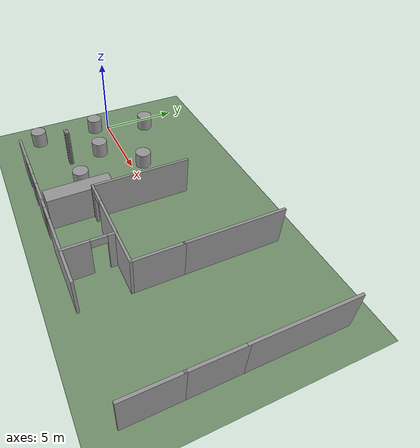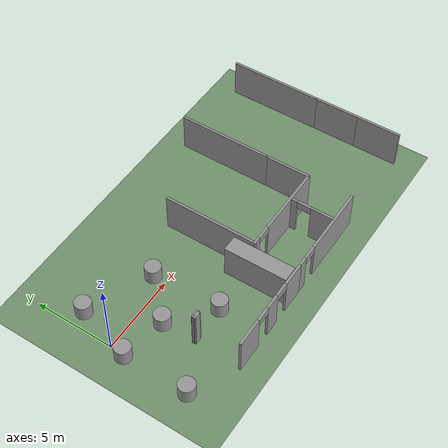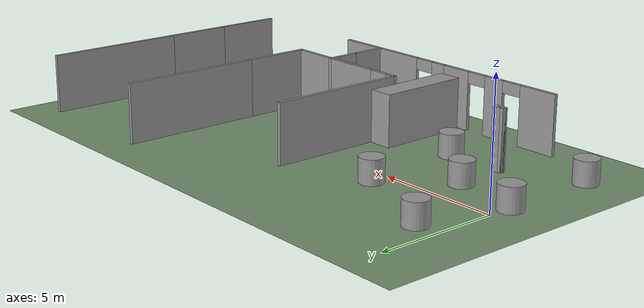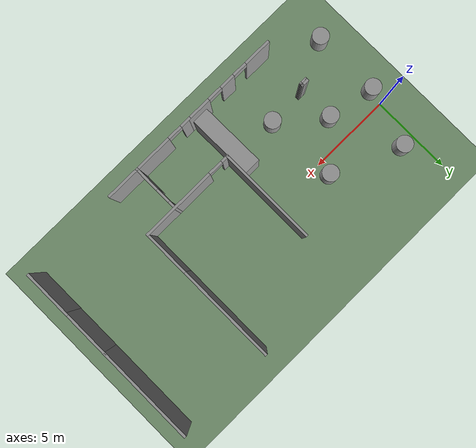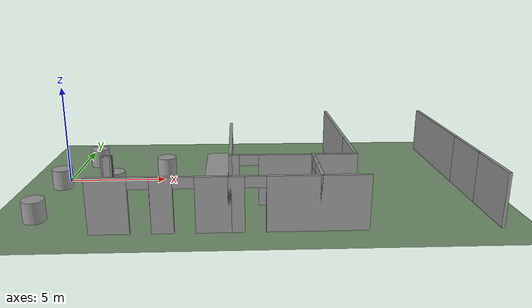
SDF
<sdf version="1.7">
 <world name="default">
  <model name="ground_plane">
   <static>1</static>
   <link name="link">
    <collision name="collision">
     <geometry><plane><normal>0 0 1</normal><size>600 600</size></plane></geometry>
     <surface>
      <contact><collide_bitmask>65535</collide_bitmask></contact>
      <friction><ode><mu>100</mu><mu2>50</mu2></ode></friction>
     </surface>
    </collision>
    <visual name="visual">
     <cast_shadows>0</cast_shadows>
     <geometry><plane><normal>0 0 1</normal><size>100 100</size></plane></geometry>
     <material><ambient>0.45 0.57 0.43 1</ambient><diffuse>0.45 0.57 0.43 1</diffuse></material>
    </visual>
   </link>
  </model>
  <model name="unit_box">
   <pose>7.98528 -4.31989 1.08896 -0 9.8e-05 -1.56185</pose>
   <link name="link">
    <inertial>
     <mass>1</mass>
     <inertia>
      <ixx>0.166667</ixx>
      <ixy>0</ixy>
      <ixz>0</ixz>
      <iyy>0.166667</iyy>
      <iyz>0</iyz>
      <izz>0.166667</izz>
     </inertia>
    </inertial>
    <collision name="collision"><geometry><box><size>3.92499 1 2.1783</size></box></geometry></collision>
    <visual name="visual">
     <geometry><box><size>3.92499 1 2.1783</size></box></geometry>
     <material>
      <script><name>Gazebo/Grey</name><uri>file://media/materials/scripts/gazebo.material</uri></script>
     </material>
    </visual>
   </link>
  </model>
  <model name="unit_cylinder">
   <pose>-0.09276 -5.01655 0.499994 3e-06 -3e-06 0</pose>
   <link name="link">
    <inertial>
     <mass>1</mass>
     <inertia><ixx>0.145833</ixx><ixy>0</ixy><ixz>0</ixz><iyy>0.145833</iyy><iyz>0</iyz><izz>0.125</izz></inertia>
    </inertial>
    <collision name="collision">
     <geometry><cylinder><radius>0.5</radius><length>1</length></cylinder></geometry>
    </collision>
    <visual name="visual">
     <geometry><cylinder><radius>0.5</radius><length>1</length></cylinder></geometry>
     <material>
      <script><name>Gazebo/Grey</name><uri>file://media/materials/scripts/gazebo.material</uri></script>
     </material>
    </visual>
   </link>
  </model>
  <model name="unit_cylinder_0">
   <pose>-0.106662 -0.917953 0.499996 -3e-06 3e-06 0</pose>
   <link name="link">
    <inertial>
     <mass>1</mass>
     <inertia><ixx>0.145833</ixx><ixy>0</ixy><ixz>0</ixz><iyy>0.145833</iyy><iyz>0</iyz><izz>0.125</izz></inertia>
    </inertial>
    <collision name="collision">
     <geometry><cylinder><radius>0.5</radius><length>1</length></cylinder></geometry>
    </collision>
    <visual name="visual">
     <geometry><cylinder><radius>0.5</radius><length>1</length></cylinder></geometry>
     <material>
      <script><name>Gazebo/Grey</name><uri>file://media/materials/scripts/gazebo.material</uri></script>
     </material>
    </visual>
   </link>
  </model>
  <model name="unit_cylinder_1">
   <pose>5.20323 -3.53372 0.499994 3e-06 -3e-06 0</pose>
   <link name="link">
    <inertial>
     <mass>1</mass>
     <inertia><ixx>0.145833</ixx><ixy>0</ixy><ixz>0</ixz><iyy>0.145833</iyy><iyz>0</iyz><izz>0.125</izz></inertia>
    </inertial>
    <collision name="collision">
     <geometry><cylinder><radius>0.5</radius><length>1</length></cylinder></geometry>
    </collision>
    <visual name="visual">
     <geometry><cylinder><radius>0.5</radius><length>1</length></cylinder></geometry>
     <material>
      <script><name>Gazebo/Grey</name><uri>file://media/materials/scripts/gazebo.material</uri></script>
     </material>
    </visual>
   </link>
  </model>
  <model name="unit_cylinder_2">
   <pose>5.01638 0.814972 0.499997 4e-06 2e-06 -0</pose>
   <link name="link">
    <inertial>
     <mass>1</mass>
     <inertia><ixx>0.145833</ixx><ixy>0</ixy><ixz>0</ixz><iyy>0.145833</iyy><iyz>0</iyz><izz>0.125</izz></inertia>
    </inertial>
    <collision name="collision">
     <geometry><cylinder><radius>0.5</radius><length>1</length></cylinder></geometry>
    </collision>
    <visual name="visual">
     <geometry><cylinder><radius>0.5</radius><length>1</length></cylinder></geometry>
     <material>
      <script><name>Gazebo/Grey</name><uri>file://media/materials/scripts/gazebo.material</uri></script>
     </material>
    </visual>
   </link>
  </model>
  <model name="myhal_V3_2">
   <link name="Wall_326">
    <pose>20.475 0 0 0 0 -1.5708</pose>
    <visual name="Wall_326_Visual">
     <pose>0 0 1.25 0 -0 0</pose>
     <geometry><box><size>6 0.15 2.5</size></box></geometry>
     <material>
      <script><uri>file://media/materials/scripts/gazebo.material</uri><name>Gazebo/Grey</name></script>
      <ambient>1 1 1 1</ambient>
      <shader type="pixel"/>
     </material>
     <meta><layer>0</layer></meta>
    </visual>
    <collision name="Wall_326_Collision">
     <pose>0 0 1.25 0 -0 0</pose>
     <geometry><box><size>6 0.15 2.5</size></box></geometry>
     <surface>
      <friction>
       <ode><mu>1</mu><mu2>1</mu2><fdir1>0 0 0</fdir1><slip1>0</slip1><slip2>0</slip2></ode>
       <torsional>
        <coefficient>1</coefficient>
        <patch_radius>0</patch_radius>
        <surface_radius>0</surface_radius>
        <use_patch_radius>1</use_patch_radius>
        <ode><slip>0</slip></ode>
       </torsional>
      </friction>
      <bounce><restitution_coefficient>0</restitution_coefficient><threshold>1e+06</threshold></bounce>
      <contact>
       <collide_without_contact>0</collide_without_contact>
       <collide_without_contact_bitmask>1</collide_without_contact_bitmask>
       <collide_bitmask>1</collide_bitmask>
       <ode>
        <soft_cfm>0</soft_cfm>
        <soft_erp>0.2</soft_erp>
        <kp>1e+13</kp>
        <kd>1</kd>
        <max_vel>0.01</max_vel>
        <min_depth>0</min_depth>
       </ode>
       <bullet>
        <split_impulse>1</split_impulse>
        <split_impulse_penetration_threshold>-0.01</split_impulse_penetration_threshold>
        <soft_cfm>0</soft_cfm>
        <soft_erp>0.2</soft_erp>
        <kp>1e+13</kp>
        <kd>1</kd>
       </bullet>
      </contact>
     </surface>
    </collision>
   </link>
   <link name="Wall_327">
    <pose>20.475 -4.35 0 0 0 -1.5708</pose>
    <visual name="Wall_327_Visual">
     <pose>0 0 1.25 0 -0 0</pose>
     <geometry><box><size>3 0.15 2.5</size></box></geometry>
     <material>
      <script><uri>file://media/materials/scripts/gazebo.material</uri><name>Gazebo/Grey</name></script>
      <ambient>1 1 1 1</ambient>
      <shader type="pixel"/>
     </material>
     <meta><layer>0</layer></meta>
    </visual>
    <collision name="Wall_327_Collision">
     <pose>0 0 1.25 0 -0 0</pose>
     <geometry><box><size>3 0.15 2.5</size></box></geometry>
     <surface>
      <friction>
       <ode><mu>1</mu><mu2>1</mu2><fdir1>0 0 0</fdir1><slip1>0</slip1><slip2>0</slip2></ode>
       <torsional>
        <coefficient>1</coefficient>
        <patch_radius>0</patch_radius>
        <surface_radius>0</surface_radius>
        <use_patch_radius>1</use_patch_radius>
        <ode><slip>0</slip></ode>
       </torsional>
      </friction>
      <bounce><restitution_coefficient>0</restitution_coefficient><threshold>1e+06</threshold></bounce>
      <contact>
       <collide_without_contact>0</collide_without_contact>
       <collide_without_contact_bitmask>1</collide_without_contact_bitmask>
       <collide_bitmask>1</collide_bitmask>
       <ode>
        <soft_cfm>0</soft_cfm>
        <soft_erp>0.2</soft_erp>
        <kp>1e+13</kp>
        <kd>1</kd>
        <max_vel>0.01</max_vel>
        <min_depth>0</min_depth>
       </ode>
       <bullet>
        <split_impulse>1</split_impulse>
        <split_impulse_penetration_threshold>-0.01</split_impulse_penetration_threshold>
        <soft_cfm>0</soft_cfm>
        <soft_erp>0.2</soft_erp>
        <kp>1e+13</kp>
        <kd>1</kd>
       </bullet>
      </contact>
     </surface>
    </collision>
   </link>
   <link name="Wall_328">
    <pose>20.475 -7.2 0 0 0 -1.5708</pose>
    <visual name="Wall_328_Visual">
     <pose>0 0 1.25 0 -0 0</pose>
     <geometry><box><size>3 0.15 2.5</size></box></geometry>
     <material>
      <script><uri>file://media/materials/scripts/gazebo.material</uri><name>Gazebo/Grey</name></script>
      <ambient>1 1 1 1</ambient>
      <shader type="pixel"/>
     </material>
     <meta><layer>0</layer></meta>
    </visual>
    <collision name="Wall_328_Collision">
     <pose>0 0 1.25 0 -0 0</pose>
     <geometry><box><size>3 0.15 2.5</size></box></geometry>
     <surface>
      <friction>
       <ode><mu>1</mu><mu2>1</mu2><fdir1>0 0 0</fdir1><slip1>0</slip1><slip2>0</slip2></ode>
       <torsional>
        <coefficient>1</coefficient>
        <patch_radius>0</patch_radius>
        <surface_radius>0</surface_radius>
        <use_patch_radius>1</use_patch_radius>
        <ode><slip>0</slip></ode>
       </torsional>
      </friction>
      <bounce><restitution_coefficient>0</restitution_coefficient><threshold>1e+06</threshold></bounce>
      <contact>
       <collide_without_contact>0</collide_without_contact>
       <collide_without_contact_bitmask>1</collide_without_contact_bitmask>
       <collide_bitmask>1</collide_bitmask>
       <ode>
        <soft_cfm>0</soft_cfm>
        <soft_erp>0.2</soft_erp>
        <kp>1e+13</kp>
        <kd>1</kd>
        <max_vel>0.01</max_vel>
        <min_depth>0</min_depth>
       </ode>
       <bullet>
        <split_impulse>1</split_impulse>
        <split_impulse_penetration_threshold>-0.01</split_impulse_penetration_threshold>
        <soft_cfm>0</soft_cfm>
        <soft_erp>0.2</soft_erp>
        <kp>1e+13</kp>
        <kd>1</kd>
       </bullet>
      </contact>
     </surface>
    </collision>
   </link>
   <link name="Wall_474">
    <pose>14.625 0 0 0 0 -1.5708</pose>
    <visual name="Wall_474_Visual">
     <pose>0 0 1.25 0 -0 0</pose>
     <geometry><box><size>6 0.15 2.5</size></box></geometry>
     <material>
      <script><uri>file://media/materials/scripts/gazebo.material</uri><name>Gazebo/Grey</name></script>
      <ambient>1 1 1 1</ambient>
      <shader type="pixel"/>
     </material>
     <meta><layer>0</layer></meta>
    </visual>
    <collision name="Wall_474_Collision">
     <pose>0 0 1.25 0 -0 0</pose>
     <geometry><box><size>6 0.15 2.5</size></box></geometry>
     <surface>
      <friction>
       <ode><mu>1</mu><mu2>1</mu2><fdir1>0 0 0</fdir1><slip1>0</slip1><slip2>0</slip2></ode>
       <torsional>
        <coefficient>1</coefficient>
        <patch_radius>0</patch_radius>
        <surface_radius>0</surface_radius>
        <use_patch_radius>1</use_patch_radius>
        <ode><slip>0</slip></ode>
       </torsional>
      </friction>
      <bounce><restitution_coefficient>0</restitution_coefficient><threshold>1e+06</threshold></bounce>
      <contact>
       <collide_without_contact>0</collide_without_contact>
       <collide_without_contact_bitmask>1</collide_without_contact_bitmask>
       <collide_bitmask>1</collide_bitmask>
       <ode>
        <soft_cfm>0</soft_cfm>
        <soft_erp>0.2</soft_erp>
        <kp>1e+13</kp>
        <kd>1</kd>
        <max_vel>0.01</max_vel>
        <min_depth>0</min_depth>
       </ode>
       <bullet>
        <split_impulse>1</split_impulse>
        <split_impulse_penetration_threshold>-0.01</split_impulse_penetration_threshold>
        <soft_cfm>0</soft_cfm>
        <soft_erp>0.2</soft_erp>
        <kp>1e+13</kp>
        <kd>1</kd>
       </bullet>
      </contact>
     </surface>
    </collision>
   </link>
   <link name="Wall_475">
    <pose>14.625 -4.35 0 0 0 -1.5708</pose>
    <visual name="Wall_475_Visual">
     <pose>0 0 1.25 0 -0 0</pose>
     <geometry><box><size>3 0.15 2.5</size></box></geometry>
     <material>
      <script><uri>file://media/materials/scripts/gazebo.material</uri><name>Gazebo/Grey</name></script>
      <ambient>1 1 1 1</ambient>
      <shader type="pixel"/>
     </material>
     <meta><layer>0</layer></meta>
    </visual>
    <collision name="Wall_475_Collision">
     <pose>0 0 1.25 0 -0 0</pose>
     <geometry><box><size>3 0.15 2.5</size></box></geometry>
     <surface>
      <friction>
       <ode><mu>1</mu><mu2>1</mu2><fdir1>0 0 0</fdir1><slip1>0</slip1><slip2>0</slip2></ode>
       <torsional>
        <coefficient>1</coefficient>
        <patch_radius>0</patch_radius>
        <surface_radius>0</surface_radius>
        <use_patch_radius>1</use_patch_radius>
        <ode><slip>0</slip></ode>
       </torsional>
      </friction>
      <bounce><restitution_coefficient>0</restitution_coefficient><threshold>1e+06</threshold></bounce>
      <contact>
       <collide_without_contact>0</collide_without_contact>
       <collide_without_contact_bitmask>1</collide_without_contact_bitmask>
       <collide_bitmask>1</collide_bitmask>
       <ode>
        <soft_cfm>0</soft_cfm>
        <soft_erp>0.2</soft_erp>
        <kp>1e+13</kp>
        <kd>1</kd>
        <max_vel>0.01</max_vel>
        <min_depth>0</min_depth>
       </ode>
       <bullet>
        <split_impulse>1</split_impulse>
        <split_impulse_penetration_threshold>-0.01</split_impulse_penetration_threshold>
        <soft_cfm>0</soft_cfm>
        <soft_erp>0.2</soft_erp>
        <kp>1e+13</kp>
        <kd>1</kd>
       </bullet>
      </contact>
     </surface>
    </collision>
   </link>
   <link name="Wall_476">
    <pose>11.7 -5.775 0 0 -0 3.14159</pose>
    <visual name="Wall_476_Visual_0">
     <pose>-0.696561 0 1.25 0 -0 0</pose>
     <geometry><box><size>4.60688 0.15 2.5</size></box></geometry>
     <material>
      <script><uri>file://media/materials/scripts/gazebo.material</uri><name>Gazebo/Grey</name></script>
      <ambient>1 1 1 1</ambient>
      <shader type="pixel"/>
     </material>
     <meta><layer>0</layer></meta>
    </visual>
    <visual name="Wall_476_Visual_1">
     <pose>2.75344 0 1.25 0 -0 0</pose>
     <geometry><box><size>0.493122 0.15 2.5</size></box></geometry>
     <material>
      <script><uri>file://media/materials/scripts/gazebo.material</uri><name>Gazebo/Grey</name></script>
      <ambient>1 1 1 1</ambient>
      <shader type="pixel"/>
     </material>
     <meta><layer>0</layer></meta>
    </visual>
    <visual name="Wall_476_Visual_2">
     <pose>2.05688 0 2.25 0 -0 0</pose>
     <geometry><box><size>0.9 0.15 0.5</size></box></geometry>
     <material>
      <script><uri>file://media/materials/scripts/gazebo.material</uri><name>Gazebo/Grey</name></script>
      <ambient>1 1 1 1</ambient>
      <shader type="pixel"/>
     </material>
     <meta><layer>0</layer></meta>
    </visual>
    <collision name="Wall_476_Collision_0">
     <pose>-0.696561 0 1.25 0 -0 0</pose>
     <geometry><box><size>4.60688 0.15 2.5</size></box></geometry>
     <surface>
      <friction>
       <ode><mu>1</mu><mu2>1</mu2><fdir1>0 0 0</fdir1><slip1>0</slip1><slip2>0</slip2></ode>
       <torsional>
        <coefficient>1</coefficient>
        <patch_radius>0</patch_radius>
        <surface_radius>0</surface_radius>
        <use_patch_radius>1</use_patch_radius>
        <ode><slip>0</slip></ode>
       </torsional>
      </friction>
      <bounce><restitution_coefficient>0</restitution_coefficient><threshold>1e+06</threshold></bounce>
      <contact>
       <collide_without_contact>0</collide_without_contact>
       <collide_without_contact_bitmask>1</collide_without_contact_bitmask>
       <collide_bitmask>1</collide_bitmask>
       <ode>
        <soft_cfm>0</soft_cfm>
        <soft_erp>0.2</soft_erp>
        <kp>1e+13</kp>
        <kd>1</kd>
        <max_vel>0.01</max_vel>
        <min_depth>0</min_depth>
       </ode>
       <bullet>
        <split_impulse>1</split_impulse>
        <split_impulse_penetration_threshold>-0.01</split_impulse_penetration_threshold>
        <soft_cfm>0</soft_cfm>
        <soft_erp>0.2</soft_erp>
        <kp>1e+13</kp>
        <kd>1</kd>
       </bullet>
      </contact>
     </surface>
    </collision>
    <collision name="Wall_476_Collision_1">
     <pose>2.75344 0 1.25 0 -0 0</pose>
     <geometry><box><size>0.493122 0.15 2.5</size></box></geometry>
     <surface>
      <friction>
       <ode><mu>1</mu><mu2>1</mu2><fdir1>0 0 0</fdir1><slip1>0</slip1><slip2>0</slip2></ode>
       <torsional>
        <coefficient>1</coefficient>
        <patch_radius>0</patch_radius>
        <surface_radius>0</surface_radius>
        <use_patch_radius>1</use_patch_radius>
        <ode><slip>0</slip></ode>
       </torsional>
      </friction>
      <bounce><restitution_coefficient>0</restitution_coefficient><threshold>1e+06</threshold></bounce>
      <contact>
       <collide_without_contact>0</collide_without_contact>
       <collide_without_contact_bitmask>1</collide_without_contact_bitmask>
       <collide_bitmask>1</collide_bitmask>
       <ode>
        <soft_cfm>0</soft_cfm>
        <soft_erp>0.2</soft_erp>
        <kp>1e+13</kp>
        <kd>1</kd>
        <max_vel>0.01</max_vel>
        <min_depth>0</min_depth>
       </ode>
       <bullet>
        <split_impulse>1</split_impulse>
        <split_impulse_penetration_threshold>-0.01</split_impulse_penetration_threshold>
        <soft_cfm>0</soft_cfm>
        <soft_erp>0.2</soft_erp>
        <kp>1e+13</kp>
        <kd>1</kd>
       </bullet>
      </contact>
     </surface>
    </collision>
    <collision name="Wall_476_Collision_2">
     <pose>2.05688 0 2.25 0 -0 0</pose>
     <geometry><box><size>0.9 0.15 0.5</size></box></geometry>
     <surface>
      <friction>
       <ode><mu>1</mu><mu2>1</mu2><fdir1>0 0 0</fdir1><slip1>0</slip1><slip2>0</slip2></ode>
       <torsional>
        <coefficient>1</coefficient>
        <patch_radius>0</patch_radius>
        <surface_radius>0</surface_radius>
        <use_patch_radius>1</use_patch_radius>
        <ode><slip>0</slip></ode>
       </torsional>
      </friction>
      <bounce><restitution_coefficient>0</restitution_coefficient><threshold>1e+06</threshold></bounce>
      <contact>
       <collide_without_contact>0</collide_without_contact>
       <collide_without_contact_bitmask>1</collide_without_contact_bitmask>
       <collide_bitmask>1</collide_bitmask>
       <ode>
        <soft_cfm>0</soft_cfm>
        <soft_erp>0.2</soft_erp>
        <kp>1e+13</kp>
        <kd>1</kd>
        <max_vel>0.01</max_vel>
        <min_depth>0</min_depth>
       </ode>
       <bullet>
        <split_impulse>1</split_impulse>
        <split_impulse_penetration_threshold>-0.01</split_impulse_penetration_threshold>
        <soft_cfm>0</soft_cfm>
        <soft_erp>0.2</soft_erp>
        <kp>1e+13</kp>
        <kd>1</kd>
       </bullet>
      </contact>
     </surface>
    </collision>
   </link>
   <link name="Wall_477">
    <pose>8.775 -2.85 0 0 -0 1.5708</pose>
    <visual name="Wall_477_Visual">
     <pose>0 0 1.25 0 -0 0</pose>
     <geometry><box><size>6 0.15 2.5</size></box></geometry>
     <material>
      <script><uri>file://media/materials/scripts/gazebo.material</uri><name>Gazebo/Grey</name></script>
      <ambient>1 1 1 1</ambient>
      <shader type="pixel"/>
     </material>
     <meta><layer>0</layer></meta>
    </visual>
    <collision name="Wall_477_Collision">
     <pose>0 0 1.25 0 -0 0</pose>
     <geometry><box><size>6 0.15 2.5</size></box></geometry>
     <surface>
      <friction>
       <ode><mu>1</mu><mu2>1</mu2><fdir1>0 0 0</fdir1><slip1>0</slip1><slip2>0</slip2></ode>
       <torsional>
        <coefficient>1</coefficient>
        <patch_radius>0</patch_radius>
        <surface_radius>0</surface_radius>
        <use_patch_radius>1</use_patch_radius>
        <ode><slip>0</slip></ode>
       </torsional>
      </friction>
      <bounce><restitution_coefficient>0</restitution_coefficient><threshold>1e+06</threshold></bounce>
      <contact>
       <collide_without_contact>0</collide_without_contact>
       <collide_without_contact_bitmask>1</collide_without_contact_bitmask>
       <collide_bitmask>1</collide_bitmask>
       <ode>
        <soft_cfm>0</soft_cfm>
        <soft_erp>0.2</soft_erp>
        <kp>1e+13</kp>
        <kd>1</kd>
        <max_vel>0.01</max_vel>
        <min_depth>0</min_depth>
       </ode>
       <bullet>
        <split_impulse>1</split_impulse>
        <split_impulse_penetration_threshold>-0.01</split_impulse_penetration_threshold>
        <soft_cfm>0</soft_cfm>
        <soft_erp>0.2</soft_erp>
        <kp>1e+13</kp>
        <kd>1</kd>
       </bullet>
      </contact>
     </surface>
    </collision>
   </link>
   <link name="Wall_486">
    <pose>5.85 -8.625 0 0 -0 0</pose>
    <inertial>
     <mass>1</mass>
     <inertia><ixx>1</ixx><ixy>0</ixy><ixz>0</ixz><iyy>1</iyy><iyz>0</iyz><izz>1</izz></inertia>
    </inertial>
    <visual name="Wall_486_Visual_0">
     <pose>-2.13314 0 1.25 0 -0 0</pose>
     <geometry><box><size>1.73371 0.15 2.5</size></box></geometry>
     <material>
      <script><uri>file://media/materials/scripts/gazebo.material</uri><name>Gazebo/Grey</name></script>
      <ambient>1 1 1 1</ambient>
      <shader type="pixel"><normal_map>__default__</normal_map></shader>
     </material>
     <meta><layer>0</layer></meta>
    </visual>
    <visual name="Wall_486_Visual_1">
     <pose>0.10739 0 1.25 0 -0 0</pose>
     <geometry><box><size>0.94735 0.15 2.5</size></box></geometry>
     <material>
      <script><uri>file://media/materials/scripts/gazebo.material</uri><name>Gazebo/Grey</name></script>
      <ambient>1 1 1 1</ambient>
      <shader type="pixel"><normal_map>__default__</normal_map></shader>
     </material>
     <meta><layer>0</layer></meta>
    </visual>
    <visual name="Wall_486_Visual_2">
     <pose>2.24053 0 1.25 0 -0 0</pose>
     <geometry><box><size>1.51893 0.15 2.5</size></box></geometry>
     <material>
      <script><uri>file://media/materials/scripts/gazebo.material</uri><name>Gazebo/Grey</name></script>
      <ambient>1 1 1 1</ambient>
      <shader type="pixel"><normal_map>__default__</normal_map></shader>
     </material>
     <meta><layer>0</layer></meta>
    </visual>
    <visual name="Wall_486_Visual_3">
     <pose>-0.816286 0 2.25 0 -0 0</pose>
     <geometry><box><size>0.9 0.15 0.5</size></box></geometry>
     <material>
      <script><uri>file://media/materials/scripts/gazebo.material</uri><name>Gazebo/Grey</name></script>
      <ambient>1 1 1 1</ambient>
      <shader type="pixel"><normal_map>__default__</normal_map></shader>
     </material>
     <meta><layer>0</layer></meta>
    </visual>
    <visual name="Wall_486_Visual_4">
     <pose>1.03106 0 2.25 0 -0 0</pose>
     <geometry><box><size>0.9 0.15 0.5</size></box></geometry>
     <material>
      <script><uri>file://media/materials/scripts/gazebo.material</uri><name>Gazebo/Grey</name></script>
      <ambient>1 1 1 1</ambient>
      <shader type="pixel"><normal_map>__default__</normal_map></shader>
     </material>
     <meta><layer>0</layer></meta>
    </visual>
    <collision name="Wall_486_Collision_0">
     <pose>-2.13314 0 1.25 0 -0 0</pose>
     <geometry><box><size>1.73371 0.15 2.5</size></box></geometry>
     <surface>
      <friction>
       <ode><mu>1</mu><mu2>1</mu2><fdir1>0 0 0</fdir1><slip1>0</slip1><slip2>0</slip2></ode>
       <torsional>
        <coefficient>1</coefficient>
        <patch_radius>0</patch_radius>
        <surface_radius>0</surface_radius>
        <use_patch_radius>1</use_patch_radius>
        <ode><slip>0</slip></ode>
       </torsional>
      </friction>
      <bounce><restitution_coefficient>0</restitution_coefficient><threshold>1e+06</threshold></bounce>
      <contact>
       <collide_without_contact>0</collide_without_contact>
       <collide_without_contact_bitmask>1</collide_without_contact_bitmask>
       <collide_bitmask>1</collide_bitmask>
       <ode>
        <soft_cfm>0</soft_cfm>
        <soft_erp>0.2</soft_erp>
        <kp>1e+13</kp>
        <kd>1</kd>
        <max_vel>0.01</max_vel>
        <min_depth>0</min_depth>
       </ode>
       <bullet>
        <split_impulse>1</split_impulse>
        <split_impulse_penetration_threshold>-0.01</split_impulse_penetration_threshold>
        <soft_cfm>0</soft_cfm>
        <soft_erp>0.2</soft_erp>
        <kp>1e+13</kp>
        <kd>1</kd>
       </bullet>
      </contact>
     </surface>
    </collision>
    <collision name="Wall_486_Collision_1">
     <pose>0.10739 0 1.25 0 -0 0</pose>
     <geometry><box><size>0.94735 0.15 2.5</size></box></geometry>
     <surface>
      <friction>
       <ode><mu>1</mu><mu2>1</mu2><fdir1>0 0 0</fdir1><slip1>0</slip1><slip2>0</slip2></ode>
       <torsional>
        <coefficient>1</coefficient>
        <patch_radius>0</patch_radius>
        <surface_radius>0</surface_radius>
        <use_patch_radius>1</use_patch_radius>
        <ode><slip>0</slip></ode>
       </torsional>
      </friction>
      <bounce><restitution_coefficient>0</restitution_coefficient><threshold>1e+06</threshold></bounce>
      <contact>
       <collide_without_contact>0</collide_without_contact>
       <collide_without_contact_bitmask>1</collide_without_contact_bitmask>
       <collide_bitmask>1</collide_bitmask>
       <ode>
        <soft_cfm>0</soft_cfm>
        <soft_erp>0.2</soft_erp>
        <kp>1e+13</kp>
        <kd>1</kd>
        <max_vel>0.01</max_vel>
        <min_depth>0</min_depth>
       </ode>
       <bullet>
        <split_impulse>1</split_impulse>
        <split_impulse_penetration_threshold>-0.01</split_impulse_penetration_threshold>
        <soft_cfm>0</soft_cfm>
        <soft_erp>0.2</soft_erp>
        <kp>1e+13</kp>
        <kd>1</kd>
       </bullet>
      </contact>
     </surface>
    </collision>
    <collision name="Wall_486_Collision_2">
     <pose>2.24053 0 1.25 0 -0 0</pose>
     <geometry><box><size>1.51893 0.15 2.5</size></box></geometry>
     <surface>
      <friction>
       <ode><mu>1</mu><mu2>1</mu2><fdir1>0 0 0</fdir1><slip1>0</slip1><slip2>0</slip2></ode>
       <torsional>
        <coefficient>1</coefficient>
        <patch_radius>0</patch_radius>
        <surface_radius>0</surface_radius>
        <use_patch_radius>1</use_patch_radius>
        <ode><slip>0</slip></ode>
       </torsional>
      </friction>
      <bounce><restitution_coefficient>0</restitution_coefficient><threshold>1e+06</threshold></bounce>
      <contact>
       <collide_without_contact>0</collide_without_contact>
       <collide_without_contact_bitmask>1</collide_without_contact_bitmask>
       <collide_bitmask>1</collide_bitmask>
       <ode>
        <soft_cfm>0</soft_cfm>
        <soft_erp>0.2</soft_erp>
        <kp>1e+13</kp>
        <kd>1</kd>
        <max_vel>0.01</max_vel>
        <min_depth>0</min_depth>
       </ode>
       <bullet>
        <split_impulse>1</split_impulse>
        <split_impulse_penetration_threshold>-0.01</split_impulse_penetration_threshold>
        <soft_cfm>0</soft_cfm>
        <soft_erp>0.2</soft_erp>
        <kp>1e+13</kp>
        <kd>1</kd>
       </bullet>
      </contact>
     </surface>
    </collision>
    <collision name="Wall_486_Collision_3">
     <pose>-0.816286 0 2.25 0 -0 0</pose>
     <geometry><box><size>0.9 0.15 0.5</size></box></geometry>
     <surface>
      <friction>
       <ode><mu>1</mu><mu2>1</mu2><fdir1>0 0 0</fdir1><slip1>0</slip1><slip2>0</slip2></ode>
       <torsional>
        <coefficient>1</coefficient>
        <patch_radius>0</patch_radius>
        <surface_radius>0</surface_radius>
        <use_patch_radius>1</use_patch_radius>
        <ode><slip>0</slip></ode>
       </torsional>
      </friction>
      <bounce><restitution_coefficient>0</restitution_coefficient><threshold>1e+06</threshold></bounce>
      <contact>
       <collide_without_contact>0</collide_without_contact>
       <collide_without_contact_bitmask>1</collide_without_contact_bitmask>
       <collide_bitmask>1</collide_bitmask>
       <ode>
        <soft_cfm>0</soft_cfm>
        <soft_erp>0.2</soft_erp>
        <kp>1e+13</kp>
        <kd>1</kd>
        <max_vel>0.01</max_vel>
        <min_depth>0</min_depth>
       </ode>
       <bullet>
        <split_impulse>1</split_impulse>
        <split_impulse_penetration_threshold>-0.01</split_impulse_penetration_threshold>
        <soft_cfm>0</soft_cfm>
        <soft_erp>0.2</soft_erp>
        <kp>1e+13</kp>
        <kd>1</kd>
       </bullet>
      </contact>
     </surface>
    </collision>
    <collision name="Wall_486_Collision_4">
     <pose>1.03106 0 2.25 0 -0 0</pose>
     <geometry><box><size>0.9 0.15 0.5</size></box></geometry>
     <surface>
      <friction>
       <ode><mu>1</mu><mu2>1</mu2><fdir1>0 0 0</fdir1><slip1>0</slip1><slip2>0</slip2></ode>
       <torsional>
        <coefficient>1</coefficient>
        <patch_radius>0</patch_radius>
        <surface_radius>0</surface_radius>
        <use_patch_radius>1</use_patch_radius>
        <ode><slip>0</slip></ode>
       </torsional>
      </friction>
      <bounce><restitution_coefficient>0</restitution_coefficient><threshold>1e+06</threshold></bounce>
      <contact>
       <collide_without_contact>0</collide_without_contact>
       <collide_without_contact_bitmask>1</collide_without_contact_bitmask>
       <collide_bitmask>1</collide_bitmask>
       <ode>
        <soft_cfm>0</soft_cfm>
        <soft_erp>0.2</soft_erp>
        <kp>1e+13</kp>
        <kd>1</kd>
        <max_vel>0.01</max_vel>
        <min_depth>0</min_depth>
       </ode>
       <bullet>
        <split_impulse>1</split_impulse>
        <split_impulse_penetration_threshold>-0.01</split_impulse_penetration_threshold>
        <soft_cfm>0</soft_cfm>
        <soft_erp>0.2</soft_erp>
        <kp>1e+13</kp>
        <kd>1</kd>
       </bullet>
      </contact>
     </surface>
    </collision>
   </link>
   <link name="Wall_507">
    <pose>11.7 -8.625 0 0 -0 0</pose>
    <visual name="Wall_507_Visual_0">
     <pose>-2.65028 0 1.25 0 -0 0</pose>
     <geometry><box><size>0.699436 0.15 2.5</size></box></geometry>
     <material>
      <script><uri>file://media/materials/scripts/gazebo.material</uri><name>Gazebo/Grey</name></script>
      <ambient>1 1 1 1</ambient>
      <shader type="pixel"/>
     </material>
     <meta><layer>0</layer></meta>
    </visual>
    <visual name="Wall_507_Visual_1">
     <pose>0.799718 0 1.25 0 -0 0</pose>
     <geometry><box><size>4.40056 0.15 2.5</size></box></geometry>
     <material>
      <script><uri>file://media/materials/scripts/gazebo.material</uri><name>Gazebo/Grey</name></script>
      <ambient>1 1 1 1</ambient>
      <shader type="pixel"/>
     </material>
     <meta><layer>0</layer></meta>
    </visual>
    <visual name="Wall_507_Visual_2">
     <pose>-1.85056 0 2.25 0 -0 0</pose>
     <geometry><box><size>0.9 0.15 0.5</size></box></geometry>
     <material>
      <script><uri>file://media/materials/scripts/gazebo.material</uri><name>Gazebo/Grey</name></script>
      <ambient>1 1 1 1</ambient>
      <shader type="pixel"/>
     </material>
     <meta><layer>0</layer></meta>
    </visual>
    <collision name="Wall_507_Collision_0">
     <pose>-2.65028 0 1.25 0 -0 0</pose>
     <geometry><box><size>0.699436 0.15 2.5</size></box></geometry>
     <surface>
      <friction>
       <ode><mu>1</mu><mu2>1</mu2><fdir1>0 0 0</fdir1><slip1>0</slip1><slip2>0</slip2></ode>
       <torsional>
        <coefficient>1</coefficient>
        <patch_radius>0</patch_radius>
        <surface_radius>0</surface_radius>
        <use_patch_radius>1</use_patch_radius>
        <ode><slip>0</slip></ode>
       </torsional>
      </friction>
      <bounce><restitution_coefficient>0</restitution_coefficient><threshold>1e+06</threshold></bounce>
      <contact>
       <collide_without_contact>0</collide_without_contact>
       <collide_without_contact_bitmask>1</collide_without_contact_bitmask>
       <collide_bitmask>1</collide_bitmask>
       <ode>
        <soft_cfm>0</soft_cfm>
        <soft_erp>0.2</soft_erp>
        <kp>1e+13</kp>
        <kd>1</kd>
        <max_vel>0.01</max_vel>
        <min_depth>0</min_depth>
       </ode>
       <bullet>
        <split_impulse>1</split_impulse>
        <split_impulse_penetration_threshold>-0.01</split_impulse_penetration_threshold>
        <soft_cfm>0</soft_cfm>
        <soft_erp>0.2</soft_erp>
        <kp>1e+13</kp>
        <kd>1</kd>
       </bullet>
      </contact>
     </surface>
    </collision>
    <collision name="Wall_507_Collision_1">
     <pose>0.799718 0 1.25 0 -0 0</pose>
     <geometry><box><size>4.40056 0.15 2.5</size></box></geometry>
     <surface>
      <friction>
       <ode><mu>1</mu><mu2>1</mu2><fdir1>0 0 0</fdir1><slip1>0</slip1><slip2>0</slip2></ode>
       <torsional>
        <coefficient>1</coefficient>
        <patch_radius>0</patch_radius>
        <surface_radius>0</surface_radius>
        <use_patch_radius>1</use_patch_radius>
        <ode><slip>0</slip></ode>
       </torsional>
      </friction>
      <bounce><restitution_coefficient>0</restitution_coefficient><threshold>1e+06</threshold></bounce>
      <contact>
       <collide_without_contact>0</collide_without_contact>
       <collide_without_contact_bitmask>1</collide_without_contact_bitmask>
       <collide_bitmask>1</collide_bitmask>
       <ode>
        <soft_cfm>0</soft_cfm>
        <soft_erp>0.2</soft_erp>
        <kp>1e+13</kp>
        <kd>1</kd>
        <max_vel>0.01</max_vel>
        <min_depth>0</min_depth>
       </ode>
       <bullet>
        <split_impulse>1</split_impulse>
        <split_impulse_penetration_threshold>-0.01</split_impulse_penetration_threshold>
        <soft_cfm>0</soft_cfm>
        <soft_erp>0.2</soft_erp>
        <kp>1e+13</kp>
        <kd>1</kd>
       </bullet>
      </contact>
     </surface>
    </collision>
    <collision name="Wall_507_Collision_2">
     <pose>-1.85056 0 2.25 0 -0 0</pose>
     <geometry><box><size>0.9 0.15 0.5</size></box></geometry>
     <surface>
      <friction>
       <ode><mu>1</mu><mu2>1</mu2><fdir1>0 0 0</fdir1><slip1>0</slip1><slip2>0</slip2></ode>
       <torsional>
        <coefficient>1</coefficient>
        <patch_radius>0</patch_radius>
        <surface_radius>0</surface_radius>
        <use_patch_radius>1</use_patch_radius>
        <ode><slip>0</slip></ode>
       </torsional>
      </friction>
      <bounce><restitution_coefficient>0</restitution_coefficient><threshold>1e+06</threshold></bounce>
      <contact>
       <collide_without_contact>0</collide_without_contact>
       <collide_without_contact_bitmask>1</collide_without_contact_bitmask>
       <collide_bitmask>1</collide_bitmask>
       <ode>
        <soft_cfm>0</soft_cfm>
        <soft_erp>0.2</soft_erp>
        <kp>1e+13</kp>
        <kd>1</kd>
        <max_vel>0.01</max_vel>
        <min_depth>0</min_depth>
       </ode>
       <bullet>
        <split_impulse>1</split_impulse>
        <split_impulse_penetration_threshold>-0.01</split_impulse_penetration_threshold>
        <soft_cfm>0</soft_cfm>
        <soft_erp>0.2</soft_erp>
        <kp>1e+13</kp>
        <kd>1</kd>
       </bullet>
      </contact>
     </surface>
    </collision>
   </link>
   <link name="Wall_536">
    <pose>12.625 -7.2 0 0 -0 1.5708</pose>
    <visual name="Wall_536_Visual_0">
     <pose>-0.714799 0 1.25 0 -0 0</pose>
     <geometry><box><size>1.5704 0.15 2.5</size></box></geometry>
     <material>
      <script><uri>file://media/materials/scripts/gazebo.material</uri><name>Gazebo/Grey</name></script>
      <ambient>1 1 1 1</ambient>
      <shader type="pixel"/>
     </material>
     <meta><layer>0</layer></meta>
    </visual>
    <visual name="Wall_536_Visual_1">
     <pose>1.2352 0 1.25 0 -0 0</pose>
     <geometry><box><size>0.529598 0.15 2.5</size></box></geometry>
     <material>
      <script><uri>file://media/materials/scripts/gazebo.material</uri><name>Gazebo/Grey</name></script>
      <ambient>1 1 1 1</ambient>
      <shader type="pixel"/>
     </material>
     <meta><layer>0</layer></meta>
    </visual>
    <visual name="Wall_536_Visual_2">
     <pose>0.520402 0 2.25 0 -0 0</pose>
     <geometry><box><size>0.9 0.15 0.5</size></box></geometry>
     <material>
      <script><uri>file://media/materials/scripts/gazebo.material</uri><name>Gazebo/Grey</name></script>
      <ambient>1 1 1 1</ambient>
      <shader type="pixel"/>
     </material>
     <meta><layer>0</layer></meta>
    </visual>
    <collision name="Wall_536_Collision_1">
     <pose>1.2352 0 1.25 0 -0 0</pose>
     <geometry><box><size>0.529598 0.15 2.5</size></box></geometry>
     <surface>
      <friction>
       <ode><mu>1</mu><mu2>1</mu2><fdir1>0 0 0</fdir1><slip1>0</slip1><slip2>0</slip2></ode>
       <torsional>
        <coefficient>1</coefficient>
        <patch_radius>0</patch_radius>
        <surface_radius>0</surface_radius>
        <use_patch_radius>1</use_patch_radius>
        <ode><slip>0</slip></ode>
       </torsional>
      </friction>
      <bounce><restitution_coefficient>0</restitution_coefficient><threshold>1e+06</threshold></bounce>
      <contact>
       <collide_without_contact>0</collide_without_contact>
       <collide_without_contact_bitmask>1</collide_without_contact_bitmask>
       <collide_bitmask>1</collide_bitmask>
       <ode>
        <soft_cfm>0</soft_cfm>
        <soft_erp>0.2</soft_erp>
        <kp>1e+13</kp>
        <kd>1</kd>
        <max_vel>0.01</max_vel>
        <min_depth>0</min_depth>
       </ode>
       <bullet>
        <split_impulse>1</split_impulse>
        <split_impulse_penetration_threshold>-0.01</split_impulse_penetration_threshold>
        <soft_cfm>0</soft_cfm>
        <soft_erp>0.2</soft_erp>
        <kp>1e+13</kp>
        <kd>1</kd>
       </bullet>
      </contact>
     </surface>
    </collision>
    <collision name="Wall_536_Collision_0">
     <pose>-0.714799 0 1.25 0 -0 0</pose>
     <geometry><box><size>1.5704 0.15 2.5</size></box></geometry>
     <surface>
      <friction>
       <ode><mu>1</mu><mu2>1</mu2><fdir1>0 0 0</fdir1><slip1>0</slip1><slip2>0</slip2></ode>
       <torsional>
        <coefficient>1</coefficient>
        <patch_radius>0</patch_radius>
        <surface_radius>0</surface_radius>
        <use_patch_radius>1</use_patch_radius>
        <ode><slip>0</slip></ode>
       </torsional>
      </friction>
      <bounce><restitution_coefficient>0</restitution_coefficient><threshold>1e+06</threshold></bounce>
      <contact>
       <collide_without_contact>0</collide_without_contact>
       <collide_without_contact_bitmask>1</collide_without_contact_bitmask>
       <collide_bitmask>1</collide_bitmask>
       <ode>
        <soft_cfm>0</soft_cfm>
        <soft_erp>0.2</soft_erp>
        <kp>1e+13</kp>
        <kd>1</kd>
        <max_vel>0.01</max_vel>
        <min_depth>0</min_depth>
       </ode>
       <bullet>
        <split_impulse>1</split_impulse>
        <split_impulse_penetration_threshold>-0.01</split_impulse_penetration_threshold>
        <soft_cfm>0</soft_cfm>
        <soft_erp>0.2</soft_erp>
        <kp>1e+13</kp>
        <kd>1</kd>
       </bullet>
      </contact>
     </surface>
    </collision>
    <collision name="Wall_536_Collision_2">
     <pose>0.520402 0 2.25 0 -0 0</pose>
     <geometry><box><size>0.9 0.15 0.5</size></box></geometry>
     <surface>
      <friction>
       <ode><mu>1</mu><mu2>1</mu2><fdir1>0 0 0</fdir1><slip1>0</slip1><slip2>0</slip2></ode>
       <torsional>
        <coefficient>1</coefficient>
        <patch_radius>0</patch_radius>
        <surface_radius>0</surface_radius>
        <use_patch_radius>1</use_patch_radius>
        <ode><slip>0</slip></ode>
       </torsional>
      </friction>
      <bounce><restitution_coefficient>0</restitution_coefficient><threshold>1e+06</threshold></bounce>
      <contact>
       <collide_without_contact>0</collide_without_contact>
       <collide_without_contact_bitmask>1</collide_without_contact_bitmask>
       <collide_bitmask>1</collide_bitmask>
       <ode>
        <soft_cfm>0</soft_cfm>
        <soft_erp>0.2</soft_erp>
        <kp>1e+13</kp>
        <kd>1</kd>
        <max_vel>0.01</max_vel>
        <min_depth>0</min_depth>
       </ode>
       <bullet>
        <split_impulse>1</split_impulse>
        <split_impulse_penetration_threshold>-0.01</split_impulse_penetration_threshold>
        <soft_cfm>0</soft_cfm>
        <soft_erp>0.2</soft_erp>
        <kp>1e+13</kp>
        <kd>1</kd>
       </bullet>
      </contact>
     </surface>
    </collision>
   </link>
   <link name="Wall_558">
    <pose>3.09888 -5.77612 0 0 0 -0.006463</pose>
    <visual name="Wall_558_Visual">
     <pose>0 0 1.25 0 -0 0</pose>
     <geometry><box><size>0.49776 0.15 2.5</size></box></geometry>
     <material>
      <script><uri>file://media/materials/scripts/gazebo.material</uri><name>Gazebo/Grey</name></script>
      <ambient>1 1 1 1</ambient>
      <shader type="pixel"/>
     </material>
     <meta><layer>0</layer></meta>
    </visual>
    <collision name="Wall_558_Collision">
     <pose>0 0 1.25 0 -0 0</pose>
     <geometry><box><size>0.49776 0.15 2.5</size></box></geometry>
     <surface>
      <friction>
       <ode><mu>1</mu><mu2>1</mu2><fdir1>0 0 0</fdir1><slip1>0</slip1><slip2>0</slip2></ode>
       <torsional>
        <coefficient>1</coefficient>
        <patch_radius>0</patch_radius>
        <surface_radius>0</surface_radius>
        <use_patch_radius>1</use_patch_radius>
        <ode><slip>0</slip></ode>
       </torsional>
      </friction>
      <bounce><restitution_coefficient>0</restitution_coefficient><threshold>1e+06</threshold></bounce>
      <contact>
       <collide_without_contact>0</collide_without_contact>
       <collide_without_contact_bitmask>1</collide_without_contact_bitmask>
       <collide_bitmask>1</collide_bitmask>
       <ode>
        <soft_cfm>0</soft_cfm>
        <soft_erp>0.2</soft_erp>
        <kp>1e+13</kp>
        <kd>1</kd>
        <max_vel>0.01</max_vel>
        <min_depth>0</min_depth>
       </ode>
       <bullet>
        <split_impulse>1</split_impulse>
        <split_impulse_penetration_threshold>-0.01</split_impulse_penetration_threshold>
        <soft_cfm>0</soft_cfm>
        <soft_erp>0.2</soft_erp>
        <kp>1e+13</kp>
        <kd>1</kd>
       </bullet>
      </contact>
     </surface>
    </collision>
   </link>
   <link name="Wall_572">
    <pose>2.925 -5.725 0 0 -0 1.5708</pose>
    <visual name="Wall_572_Visual">
     <pose>0 0 1.25 0 -0 0</pose>
     <geometry><box><size>0.25 0.15 2.5</size></box></geometry>
     <material>
      <script><uri>file://media/materials/scripts/gazebo.material</uri><name>Gazebo/Grey</name></script>
      <ambient>1 1 1 1</ambient>
      <shader type="pixel"/>
     </material>
     <meta><layer>0</layer></meta>
    </visual>
    <collision name="Wall_572_Collision">
     <pose>0 0 1.25 0 -0 0</pose>
     <geometry><box><size>0.25 0.15 2.5</size></box></geometry>
     <surface>
      <friction>
       <ode><mu>1</mu><mu2>1</mu2><fdir1>0 0 0</fdir1><slip1>0</slip1><slip2>0</slip2></ode>
       <torsional>
        <coefficient>1</coefficient>
        <patch_radius>0</patch_radius>
        <surface_radius>0</surface_radius>
        <use_patch_radius>1</use_patch_radius>
        <ode><slip>0</slip></ode>
       </torsional>
      </friction>
      <bounce><restitution_coefficient>0</restitution_coefficient><threshold>1e+06</threshold></bounce>
      <contact>
       <collide_without_contact>0</collide_without_contact>
       <collide_without_contact_bitmask>1</collide_without_contact_bitmask>
       <collide_bitmask>1</collide_bitmask>
       <ode>
        <soft_cfm>0</soft_cfm>
        <soft_erp>0.2</soft_erp>
        <kp>1e+13</kp>
        <kd>1</kd>
        <max_vel>0.01</max_vel>
        <min_depth>0</min_depth>
       </ode>
       <bullet>
        <split_impulse>1</split_impulse>
        <split_impulse_penetration_threshold>-0.01</split_impulse_penetration_threshold>
        <soft_cfm>0</soft_cfm>
        <soft_erp>0.2</soft_erp>
        <kp>1e+13</kp>
        <kd>1</kd>
       </bullet>
      </contact>
     </surface>
    </collision>
   </link>
   <link name="Wall_573">
    <pose>3.1 -5.675 0 0 -0 0</pose>
    <visual name="Wall_573_Visual">
     <pose>0 0 1.25 0 -0 0</pose>
     <geometry><box><size>0.5 0.15 2.5</size></box></geometry>
     <material>
      <script><uri>file://media/materials/scripts/gazebo.material</uri><name>Gazebo/Grey</name></script>
      <ambient>1 1 1 1</ambient>
      <shader type="pixel"/>
     </material>
     <meta><layer>0</layer></meta>
    </visual>
    <collision name="Wall_573_Collision">
     <pose>0 0 1.25 0 -0 0</pose>
     <geometry><box><size>0.5 0.15 2.5</size></box></geometry>
     <surface>
      <friction>
       <ode><mu>1</mu><mu2>1</mu2><fdir1>0 0 0</fdir1><slip1>0</slip1><slip2>0</slip2></ode>
       <torsional>
        <coefficient>1</coefficient>
        <patch_radius>0</patch_radius>
        <surface_radius>0</surface_radius>
        <use_patch_radius>1</use_patch_radius>
        <ode><slip>0</slip></ode>
       </torsional>
      </friction>
      <bounce><restitution_coefficient>0</restitution_coefficient><threshold>1e+06</threshold></bounce>
      <contact>
       <collide_without_contact>0</collide_without_contact>
       <collide_without_contact_bitmask>1</collide_without_contact_bitmask>
       <collide_bitmask>1</collide_bitmask>
       <ode>
        <soft_cfm>0</soft_cfm>
        <soft_erp>0.2</soft_erp>
        <kp>1e+13</kp>
        <kd>1</kd>
        <max_vel>0.01</max_vel>
        <min_depth>0</min_depth>
       </ode>
       <bullet>
        <split_impulse>1</split_impulse>
        <split_impulse_penetration_threshold>-0.01</split_impulse_penetration_threshold>
        <soft_cfm>0</soft_cfm>
        <soft_erp>0.2</soft_erp>
        <kp>1e+13</kp>
        <kd>1</kd>
       </bullet>
      </contact>
     </surface>
    </collision>
   </link>
   <link name="Wall_575">
    <pose>3.27388 -5.72612 0 0 0 -1.59277</pose>
    <visual name="Wall_575_Visual">
     <pose>0 0 1.25 0 -0 0</pose>
     <geometry><box><size>0.252272 0.15 2.5</size></box></geometry>
     <material>
      <script><uri>file://media/materials/scripts/gazebo.material</uri><name>Gazebo/Grey</name></script>
      <ambient>1 1 1 1</ambient>
      <shader type="pixel"/>
     </material>
     <meta><layer>0</layer></meta>
    </visual>
    <collision name="Wall_575_Collision">
     <pose>0 0 1.25 0 -0 0</pose>
     <geometry><box><size>0.252272 0.15 2.5</size></box></geometry>
     <surface>
      <friction>
       <ode><mu>1</mu><mu2>1</mu2><fdir1>0 0 0</fdir1><slip1>0</slip1><slip2>0</slip2></ode>
       <torsional>
        <coefficient>1</coefficient>
        <patch_radius>0</patch_radius>
        <surface_radius>0</surface_radius>
        <use_patch_radius>1</use_patch_radius>
        <ode><slip>0</slip></ode>
       </torsional>
      </friction>
      <bounce><restitution_coefficient>0</restitution_coefficient><threshold>1e+06</threshold></bounce>
      <contact>
       <collide_without_contact>0</collide_without_contact>
       <collide_without_contact_bitmask>1</collide_without_contact_bitmask>
       <collide_bitmask>1</collide_bitmask>
       <ode>
        <soft_cfm>0</soft_cfm>
        <soft_erp>0.2</soft_erp>
        <kp>1e+13</kp>
        <kd>1</kd>
        <max_vel>0.01</max_vel>
        <min_depth>0</min_depth>
       </ode>
       <bullet>
        <split_impulse>1</split_impulse>
        <split_impulse_penetration_threshold>-0.01</split_impulse_penetration_threshold>
        <soft_cfm>0</soft_cfm>
        <soft_erp>0.2</soft_erp>
        <kp>1e+13</kp>
        <kd>1</kd>
       </bullet>
      </contact>
     </surface>
    </collision>
   </link>
   <static>1</static>
   <pose>-0.2201 2.1339 0 0 -0 0</pose>
  </model>
  <model name="unit_cylinder_11">
   <pose>2.70644 -1.46775 0.499998 3e-06 -4e-06 0</pose>
   <link name="link">
    <inertial>
     <mass>1</mass>
     <inertia><ixx>0.145833</ixx><ixy>0</ixy><ixz>0</ixz><iyy>0.145833</iyy><iyz>0</iyz><izz>0.125</izz></inertia>
    </inertial>
    <collision name="collision">
     <geometry><cylinder><radius>0.5</radius><length>1</length></cylinder></geometry>
    </collision>
    <visual name="visual">
     <geometry><cylinder><radius>0.5</radius><length>1</length></cylinder></geometry>
     <material>
      <script><name>Gazebo/Grey</name><uri>file://media/materials/scripts/gazebo.material</uri></script>
     </material>
    </visual>
   </link>
  </model>
  <model name="unit_cylinder_12">
   <pose>0.953279 2.5717 0.499992 -3e-06 -4e-06 -0</pose>
   <link name="link">
    <inertial>
     <mass>1</mass>
     <inertia><ixx>0.145833</ixx><ixy>0</ixy><ixz>0</ixz><iyy>0.145833</iyy><iyz>0</iyz><izz>0.125</izz></inertia>
    </inertial>
    <collision name="collision">
     <geometry><cylinder><radius>0.5</radius><length>1</length></cylinder></geometry>
    </collision>
    <visual name="visual">
     <geometry><cylinder><radius>0.5</radius><length>1</length></cylinder></geometry>
     <material>
      <script><name>Gazebo/Grey</name><uri>file://media/materials/scripts/gazebo.material</uri></script>
     </material>
    </visual>
   </link>
  </model>
 </world>
</sdf>
